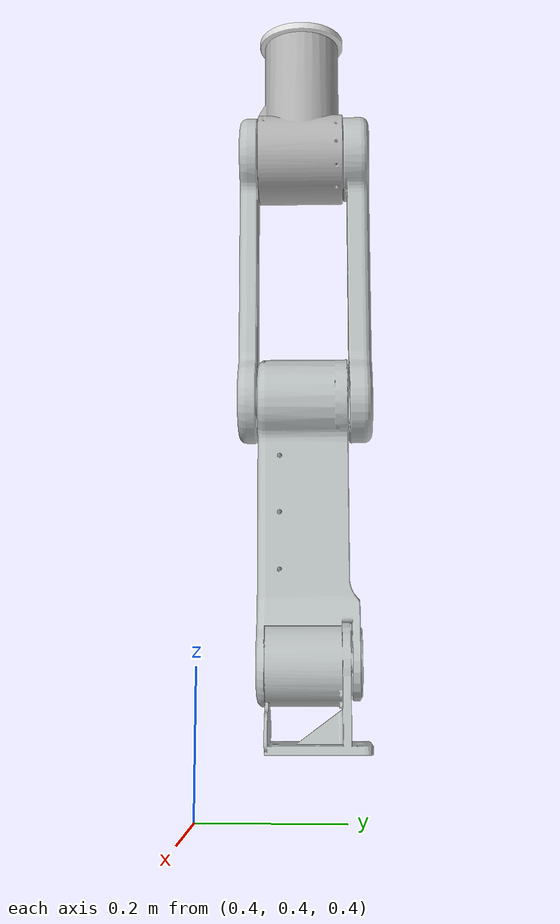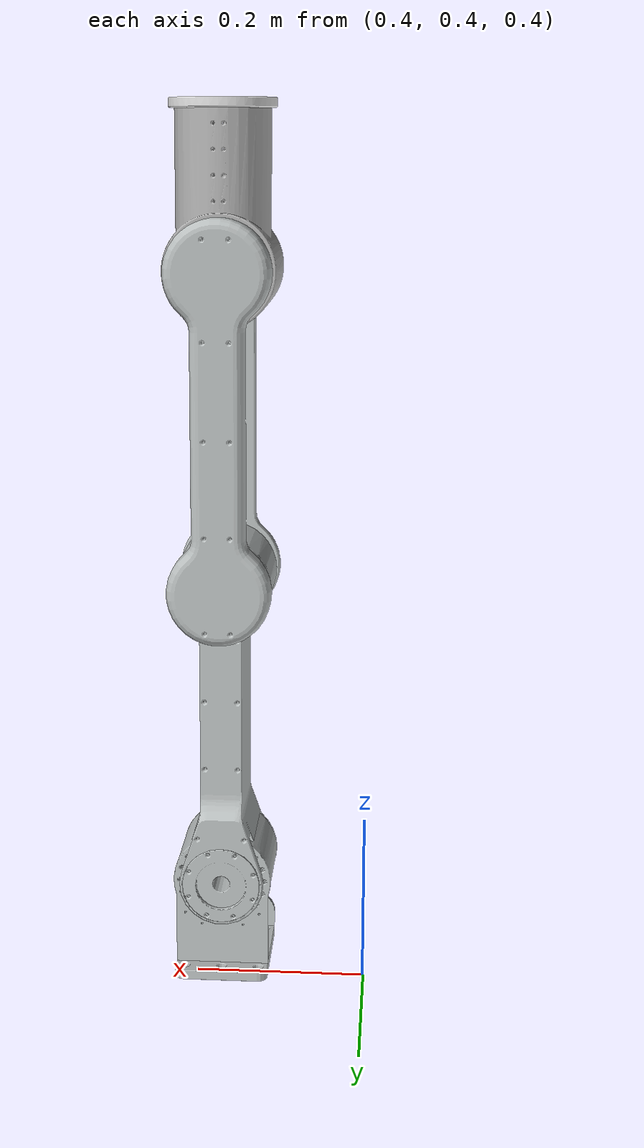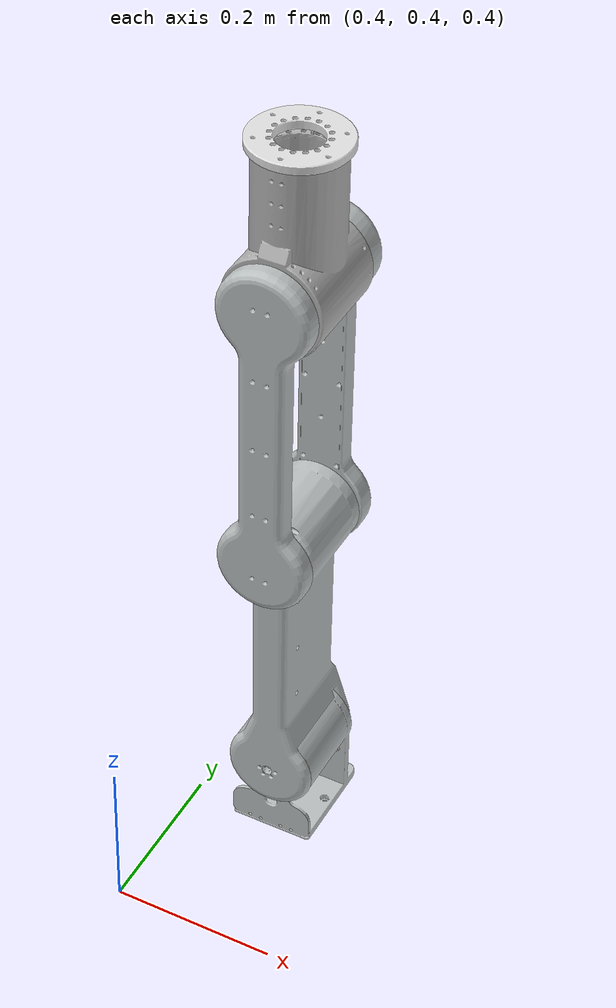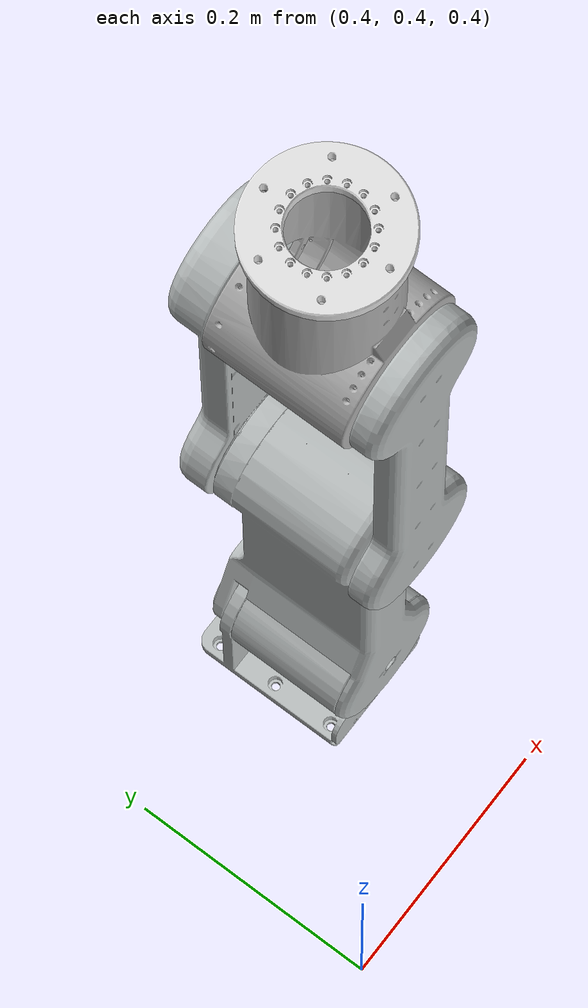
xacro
<?xml version="1.0"?>
<robot xmlns:xacro="http://www.ros.org/wiki/xacro" name="fold_elevator">

    <xacro:include filename="$(find fold_elevator_description)/urdf/fold_elevator.urdf.xacro" />
    <xacro:include filename="$(find fold_elevator_configure)/config/fold_elevator.ros2_control.xacro" />

    <link name="world"/>

    <xacro:fold_elevator name="fold_elevator" parent="world">
        <origin xyz="0.5 0.5 0.5" rpy="0 0 0"/>
    </xacro:fold_elevator>

    <xacro:fold_elevator_ros2_control name="" sim="true" can_interface="can1"/>

</robot>

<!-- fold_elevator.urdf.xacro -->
<robot xmlns:xacro="http://www.ros.org/wiki/xacro">
  <xacro:macro name="fold_elevator" params="name parent *origin">

    <link name="${name}_base_link">
      <inertial>
        <origin xyz="0.049999 0.056993 0.075571" rpy="0 0 0" />
        <mass value="0.6213" />
        <inertia
          ixx="0.00097836"
          ixy="4.1808E-09"
          ixz="1.4286E-08"
          iyy="0.0010488"
          iyz="-9.0552E-05"
          izz="0.00084789" />
      </inertial>
      <visual>
        <origin xyz="0 0 0" rpy="0 0 0" />
        <geometry>
          <mesh filename="package://fold_elevator_description/meshes/visual/base_link.STL" scale="0.001 0.001 0.001" />
        </geometry>
        <material name="">
          <color rgba="0.72941 0.74902 0.74902 1.0" />
        </material>
      </visual>
      <collision>
        <origin xyz="0 0 0" rpy="0 0 0" />
        <geometry>
          <mesh filename="package://fold_elevator_description/meshes/collision/base_link.STL" scale="0.001 0.001 0.001" />
        </geometry>
      </collision>
    </link>

    <joint name="${name}_base_joint" type="fixed">
      <parent link="${parent}"/>
      <child link="${name}_base_link"/>
      <xacro:insert_block name="origin" />
      <axis xyz="0 0 1"/>
    </joint>

    <link name="link1">
      <inertial>
        <origin xyz="6.9932E-07 0.24068 -0.05991" rpy="0 0 0" />
        <mass value="0.76492" />
        <inertia
          ixx="0.0065309"
          ixy="3.0624E-09"
          ixz="-2.2651E-08"
          iyy="0.00090992"
          iyz="6.7991E-05"
          izz="0.0064905" />
      </inertial>
      <visual>
        <origin xyz="0 0 0" rpy="0 0 0" />
        <geometry>
          <mesh filename="package://fold_elevator_description/meshes/visual/link1.STL" scale="0.001 0.001 0.001" />
        </geometry>
        <material name="">
          <color rgba="0.72941 0.74902 0.74902 1" />
        </material>
      </visual>
      <collision>
        <origin xyz="0 0 0" rpy="0 0 0" />
        <geometry>
          <mesh filename="package://fold_elevator_description/meshes/collision/link1.STL" scale="0.001 0.001 0.001" />
        </geometry>
      </collision>
    </link>

    <joint name="joint1" type="revolute">
      <origin xyz="0.05 -0.0104 0.1045" rpy="1.57079632679 0 0" />
      <parent link="${name}_base_link" />
      <child link="link1" />
      <axis xyz="0 0 -1" />
      <limit
        lower="0"
        upper="1.1344640138"
        effort="1"
        velocity="0.1745329252" />
    </joint>

    <link name="link2">
      <inertial>
        <origin xyz="-0.00019459 0.23103 -0.088288" rpy="0 0 0" />
        <mass value="0.77213" />
        <inertia
          ixx="0.0065937"
          ixy="-2.2207E-08"
          ixz="1.5389E-07"
          iyy="0.00054292"
          iyz="-2.341E-05"
          izz="0.006827" />
      </inertial>
      <visual>
        <origin xyz="0 0 0" rpy="0 0 0" />
        <geometry>
          <mesh filename="package://fold_elevator_description/meshes/visual/link2.STL" scale="0.001 0.001 0.001" />
        </geometry>
        <material name="">
          <color rgba="0.72941 0.74902 0.74902 1" />
        </material>
      </visual>
      <collision>
        <origin xyz="0 0 0" rpy="0 0 0" />
        <geometry>
          <mesh filename="package://fold_elevator_description/meshes/collision/link2.STL" scale="0.001 0.001 0.001" />
        </geometry>
      </collision>
    </link>

    <joint name="joint2" type="revolute">
      <origin xyz="0 0.325 0.0242" rpy="0 0 0" />
      <parent link="link1" />
      <child link="link2" />
      <axis xyz="0 0 -1" />
      <limit
        lower="-2.7925268032"
        upper="2.7925268032"
        effort="1"
        velocity="0.2617993878" />
    </joint>

    <link name="link3">
      <inertial>
        <origin xyz="-0.012564 0.064349 -0.0705" rpy="0 0 0" />
        <mass value="0.2939" />
        <inertia
          ixx="0.0012875"
          ixy="-1.4361E-05"
          ixz="-5.9979E-07"
          iyy="0.00054996"
          iyz="-9.7816E-05"
          izz="0.0011859" />
      </inertial>
      <visual>
        <origin xyz="0 0 0" rpy="0 0 0" />
        <geometry>
          <mesh filename="package://fold_elevator_description/meshes/visual/link3.STL" scale="0.001 0.001 0.001" />
        </geometry>
        <material name="">
          <color rgba="0.69804 0.69804 0.69804 1" />
        </material>
      </visual>
      <collision>
        <origin xyz="0 0 0" rpy="0 0 0" />
        <geometry>
          <mesh filename="package://fold_elevator_description/meshes/collision/link3.STL" scale="0.001 0.001 0.001" />
        </geometry>
      </collision>
    </link>

    <joint name="joint3" type="revolute">
      <origin xyz="0 0.325 0" rpy="0 0 0" />
      <parent link="link2" />
      <child link="link3" />
      <axis xyz="0 0 1" />
      <limit
        lower="-2.35619449"
        upper="2.35619449"
        effort="1"
        velocity="0.3490658504" />
    </joint>

    <link name="link4">
      <inertial>
        <origin xyz="1.3336E-05 -6.5521E-05 -0.0057552" rpy="0 0 0" />
        <mass value="0.076276" />
        <inertia
          ixx="7.0947E-05"
          ixy="2.2623E-08"
          ixz="6.6182E-09"
          iyy="7.0793E-05"
          iyz="-4.6063E-08"
          izz="0.00013988" />
      </inertial>
      <visual>
        <origin xyz="0 0 0" rpy="0 0 0" />
        <geometry>
          <mesh filename="package://fold_elevator_description/meshes/visual/link4.STL" scale="0.001 0.001 0.001" />
        </geometry>
        <material name="">
          <color rgba="0.88627 0.88627 0.88627 1" />
        </material>
      </visual>
      <collision>
        <origin xyz="0 0 0" rpy="0 0 0" />
        <geometry>
          <mesh filename="package://fold_elevator_description/meshes/collision/link4.STL" scale="0.001 0.001 0.001" />
        </geometry>
      </collision>
    </link>

    <joint name="joint4" type="revolute">
      <origin xyz="0 0.1687 -0.07995" rpy="-1.57079632679 0 0" />
      <parent link="link3" />
      <child link="link4" />
      <axis xyz="0 0 1" />
      <limit
        lower="-3.4906585"
        upper="3.4906585"
        effort="1"
        velocity="1.5707963268" />
    </joint>

  </xacro:macro>
</robot>
